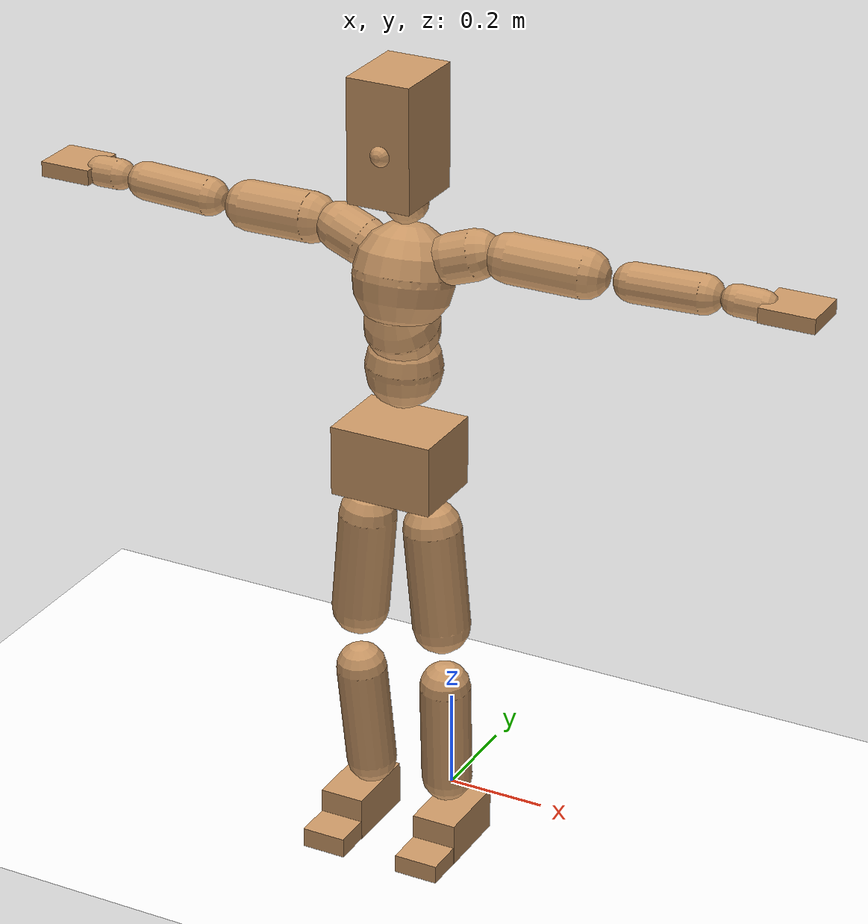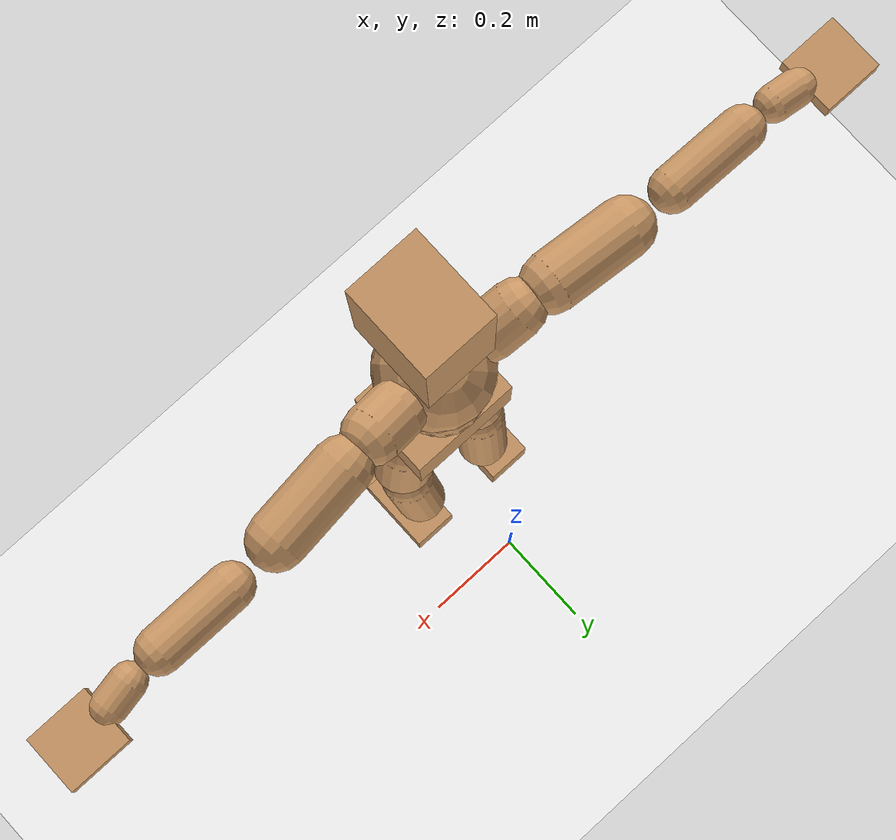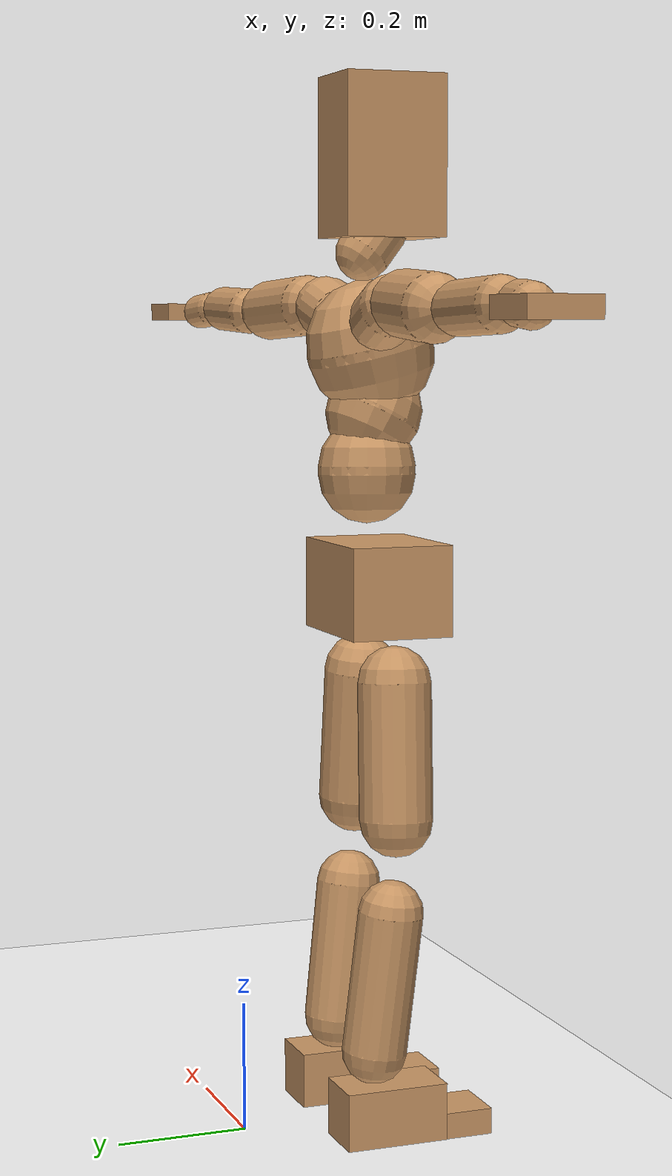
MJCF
<mujoco model="humanoid">
  <option integrator="implicitfast" />

  <visual>
    <global offwidth="1280" offheight="960" />
    <headlight active="1" ambient="0.34 0.34 0.34" diffuse="0.5 0.5 0.5" />
  </visual>

  <default>
    <joint damping="2" stiffness="2" armature="0.01" limited="true" solimplimit="0 .99 .01" />
    <geom condim="1" friction="0.7 0.005 0.0001" solimp=".99 .99 .003" solref="0.015 1" margin="0.001" rgba="0.8 0.6 .4 1" />
    <default class="smplcontact">
      <geom condim="3" friction="1. 0.005 0.0001" solref="0.015 1" solimp="0.98 0.98 0.001" priority="1" />
    </default>
    <default class="stiff_medium">
      <joint stiffness="10" />
    </default>
    <default class="stiff_medium_higher">
      <joint stiffness="50" />
    </default>
    <default class="stiff_high">
      <joint stiffness="100" />
    </default>
  </default>

  <asset>
    <texture type="skybox" builtin="gradient" rgb1="0.99 0.99 0.99" rgb2="0.608 0.828 0.892" width="100" />
    <texture builtin="flat" height="1278" mark="cross" markrgb="1 1 1" name="texgeom" random="0.01" rgb1="0.8 0.6 0.4" rgb2="0.8 0.6 0.4" type="cube" width="127" />
    <texture name="texplane" type="2d" builtin="checker" markrgb="1 1 1" rgb1="0.756 0.772 0.76" rgb2="0.6 0.6 0.6" width="100" height="100" />
    <material name="MatPlane" reflectance="0.5" texture="texplane" texrepeat="1 1" texuniform="true" />
    <material name="geom" texture="texgeom" texuniform="true" />
  </asset>

  <worldbody>
    <light name="tracking_light" pos="0 0 7" dir="0 0 -1" directional="true" cutoff="100" exponent="1" diffuse="1 1 1" specular="0.1 0.1 0.1" mode="trackcom" />
    <camera name="back" pos="0 3 2.4" xyaxes="-1 0 0 0 -1 2" mode="trackcom" />
    <camera name="side" pos="-3 0 2.4" xyaxes="0 -1 0 1 0 2" mode="trackcom" />
    <camera name="front_side" pos="-2.8 -2.8 0.8" xyaxes="0.5 -0.5 0 0.1 0.1 1" mode="trackcom" />
    <geom condim="3" name="floor" pos="0 0 0" rgba="1 1 1 1" size="100 100 .2" type="plane" material="MatPlane" />
    <body name="Pelvis" pos="-0.0018 -0.2233 0.84867" euler="90 0 0">
      <site name="Pelvis" size="0.01" />
      <freejoint name="Pelvis" />
      <geom type="box" pos="-0.0000 -0.0121 -0.0055" size="0.102891 0.0694925 0.0798875" quat="1.0000 0.0000 0.0000 0.0000" density="3165.830099" name="Pelvis" />
      <body name="L_Hip" pos="0.0628975 -0.082717 -0.006154">
        <joint name="L_Hip_x" type="hinge" pos="0 0 0" axis="1 0 0" stiffness="7.059019600000001" range="-160.0 22.92" class="stiff_medium" damping="10.088618991660221" armature="0.006408207052113538"/>
        <joint name="L_Hip_y" type="hinge" pos="0 0 0" axis="0 1 0" stiffness="7.063030000000001" range="-70.0 70.0" class="stiff_medium" damping="6.812341861400632" armature="0.006570551397430198"/>
        <joint name="L_Hip_z" type="hinge" pos="0 0 0" axis="0 0 1" stiffness="7.062227299999999" range="-28.65 90.0" class="stiff_medium" damping="6.727147226768412" armature="0.006407965630137385"/>
        <geom type="capsule" density="2040.816327" fromto="0.0062445 -0.067875 -0.0008145 0.024797 -0.271681 -0.003258" size="0.0568875" name="L_Hip" />
        <body name="L_Knee" pos="0.0310415 -0.339556 -0.0040725">
          <joint name="L_Knee_x" type="hinge" pos="0 0 0" axis="1 0 0" range="-5.16 171.89" damping="5.3987520774922855" armature="0.00643588650465933" stiffness="1.4152345199999998"/>
          <joint name="L_Knee_y" type="hinge" pos="0 0 0" axis="0 1 0" range="-4.58 6.88" damping="5.462562427142053" armature="0.006598734734073" stiffness="1.4131302"/>
          <joint name="L_Knee_z" type="hinge" pos="0 0 0" axis="0 0 1" range="-6.88 4.58" damping="5.400786754908547" armature="0.006434707722452646" stiffness="1.4165609199999998"/>
          <geom type="capsule" density="1234.567901" fromto="-0.0024435 -0.072038 -0.0078735 -0.0098645 -0.288152 -0.031675" size="0.0500425" name="L_Knee" />
          <body name="L_Ankle" pos="-0.012308 -0.36019 -0.0395485">
            <joint name="L_Ankle_x" type="hinge" pos="0 0 0" axis="1 0 0" range="-45.84 45.84" class="stiff_medium" damping="4.1195214950068735" armature="0.006581369938588682" stiffness="7.162666699999997"/>
            <joint name="L_Ankle_y" type="hinge" pos="0 0 0" axis="0 1 0" range="-74.48 22.92" class="stiff_medium" damping="2.060868718350738" armature="0.006588458314804352" stiffness="7.1626601"/>
            <joint name="L_Ankle_z" type="hinge" pos="0 0 0" axis="0 0 1" range="-4.58 4.58" class="stiff_medium" damping="4.136215798936453" armature="0.006634835312881372" stiffness="7.16265"/>
            <geom type="box" pos="0.0210865 -0.0216295 0.021901" size="0.0446775 0.04292 0.078625" quat="1.0000 0.0000 0.0000 0.0000" density="449.071558" name="L_Ankle" class="smplcontact" />
            <body name="L_Toe" pos="0.023892 -0.050499 0.107967">
              <joint name="L_Toe_x" type="hinge" pos="0 0 0" axis="1 0 0" range="-91.67 22.92" armature="0.006661741067505875" damping="1.3815313193289678" stiffness="1.43253"/>
              <joint name="L_Toe_y" type="hinge" pos="0 0 0" axis="0 1 0" range="-4.58 4.58" armature="0.006694275512852647" damping="1.3849007545977294" stiffness="1.43253"/>
              <joint name="L_Toe_z" type="hinge" pos="0 0 0" axis="0 0 1" range="-4.58 4.58" armature="0.006760058410183294" damping="1.3916886486811535" stiffness="1.43253"/>
              <geom type="box" pos="-0.002715 0.0049775 0.022444" size="0.044215 0.0185 0.04588" quat="1.0000 0.0000 0.0000 0.0000" density="423.206892" name="L_Toe" class="smplcontact" />
            </body>
          </body>
        </body>
      </body>
      <body name="R_Hip" pos="-0.0612685 -0.0819025 -0.0038915">
        <joint name="R_Hip_x" type="hinge" pos="0 0 0" axis="1 0 0" stiffness="7.059019600000001" range="-160.0 22.92" class="stiff_medium" damping="10.088618991660221" armature="0.006408207052113538"/>
        <joint name="R_Hip_y" type="hinge" pos="0 0 0" axis="0 1 0" stiffness="7.063030000000001" range="-70.0 70.0" class="stiff_medium" damping="6.812341861400632" armature="0.006570551397430198"/>
        <joint name="R_Hip_z" type="hinge" pos="0 0 0" axis="0 0 1" stiffness="7.062227299999999" range="-90.0 28.65" class="stiff_medium" damping="6.727147226768412" armature="0.006407965630137385"/>
        <geom type="capsule" density="2040.816327" fromto="-0.0069685 -0.0692325 -0.001629 -0.027693 -0.277021 -0.0064255" size="0.056055" name="R_Hip" />
        <body name="R_Knee" pos="-0.0346615 -0.346253 -0.0080545">
          <joint name="R_Knee_x" type="hinge" pos="0 0 0" axis="1 0 0" range="-5.16 171.89" damping="5.3987520774922855" armature="0.00643588650465933" stiffness="1.4152345199999998"/>
          <joint name="R_Knee_y" type="hinge" pos="0 0 0" axis="0 1 0" range="-6.88 4.58" damping="5.462562427142053" armature="0.006598734734073" stiffness="1.4131302"/>
          <joint name="R_Knee_z" type="hinge" pos="0 0 0" axis="0 0 1" range="-4.58 6.88" damping="5.400786754908547" armature="0.006434707722452646" stiffness="1.4165609199999998"/>
          <geom type="capsule" density="1234.567901" fromto="0.002896 -0.0721285 -0.0076925 0.011403 -0.288423 -0.030589" size="0.0500425" name="R_Knee" />
          <body name="R_Ankle" pos="0.014299 -0.360552 -0.0382815">
            <joint name="R_Ankle_x" type="hinge" pos="0 0 0" axis="1 0 0" range="-45.84 45.84" class="stiff_medium" damping="4.1195214950068735" armature="0.006581369938588682" stiffness="7.162666699999997"/>
            <joint name="R_Ankle_y" type="hinge" pos="0 0 0" axis="0 1 0" range="-22.92 74.48" class="stiff_medium" damping="2.060868718350738" armature="0.006588458314804352" stiffness="7.1626601"/>
            <joint name="R_Ankle_z" type="hinge" pos="0 0 0" axis="0 0 1" range="-4.58 4.58" class="stiff_medium" damping="4.136215798936453" armature="0.006634835312881372" stiffness="7.16265"/>
            <geom type="box" pos="-0.019186 -0.015747 0.023168" size="0.0446775 0.044215 0.0800125" quat="1.0000 0.0000 0.0000 0.0000" density="434.700981" name="R_Ankle" class="smplcontact" />
            <body name="R_Toe" pos="-0.022987 -0.0435305 0.111587">
              <joint name="R_Toe_x" type="hinge" pos="0 0 0" axis="1 0 0" range="-91.67 22.92" armature="0.006661741067505875" damping="1.3815313193289678" stiffness="1.43253"/>
              <joint name="R_Toe_y" type="hinge" pos="0 0 0" axis="0 1 0" range="-4.58 4.58" armature="0.006694275512852647" damping="1.3849007545977294" stiffness="1.43253"/>
              <joint name="R_Toe_z" type="hinge" pos="0 0 0" axis="0 0 1" range="-4.58 4.58" armature="0.006760058410183294" damping="1.3916886486811535" stiffness="1.43253"/>
              <geom type="box" pos="0.003801 0.0040725 0.0205435" size="0.0443075 0.01998 0.0456025" quat="1.0000 0.0000 0.0000 0.0000" density="407.384095" name="R_Toe" class="smplcontact" />
            </body>
          </body>
        </body>
      </body>
      <body name="Torso" pos="-0.00234375 0.102188 -0.0250313">
        <joint name="Torso_x" type="hinge" pos="0 0 0" axis="1 0 0" range="-25.78 57.3" class="stiff_medium" damping="12.8224026275221" armature="0.008499349819662676" stiffness="8.597468571428573"/>
        <joint name="Torso_y" type="hinge" pos="0 0 0" axis="0 1 0" range="-57.3 57.3" class="stiff_high" damping="15.294654309986344" armature="0.006651466447029044" stiffness="87.92288599999999"/>
        <joint name="Torso_z" type="hinge" pos="0 0 0" axis="0 0 1" range="-34.38 34.38" class="stiff_high" damping="16.48855203925081" armature="0.007862157342899157" stiffness="86.44966530612243"/>
        <geom type="capsule" density="2040.816327" fromto="0.00234375 0.057 0.00046875 0.0028125 0.0696563 0.0005625" size="0.0740162" name="Torso" />
        <body name="Spine" pos="0.00515625 0.12675 0.00103125">
          <joint name="Spine_x" type="hinge" pos="0 0 0" axis="1 0 0" stiffness="8.7609502" range="-25.78 57.3" class="stiff_medium" damping="13.303955779796373" armature="0.008978997602377135"/>
          <joint name="Spine_y" type="hinge" pos="0 0 0" axis="0 1 0" stiffness="8.867881020408163" range="-57.3 57.3" class="stiff_high" damping="6.138844436647147" armature="0.006640081726300023"/>
          <joint name="Spine_z" type="hinge" pos="0 0 0" axis="0 0 1" stiffness="17.7103704" range="-34.38 34.38" class="stiff_high" damping="9.899377872433693" armature="0.0076852086633651595"/>
          <geom type="capsule" density="2040.816327" fromto="0.00065625 0.0223125 0.0106875 0.00075 0.0272812 0.013125" size="0.0726688" name="Spine" />
          <body name="Chest" pos="0.00140625 0.0495938 0.0238125">
            <joint name="Chest_x" type="hinge" pos="0 0 0" axis="1 0 0" stiffness="9.015211458333333" range="-25.78 57.3" class="stiff_medium" damping="13.685797686421731" armature="0.009233828312382555"/>
            <joint name="Chest_y" type="hinge" pos="0 0 0" axis="0 1 0" stiffness="8.426705348837208" range="-57.3 57.3" class="stiff_high" damping="5.977805850699706" armature="0.006625914523638262"/>
            <joint name="Chest_z" type="hinge" pos="0 0 0" axis="0 0 1" stiffness="18.062326530612243" range="-34.38 34.38" class="stiff_high" damping="9.91897399751465" armature="0.00756532026577728"/>
            <geom type="capsule" density="2040.816327" fromto="-0.00084375 0.0639375 -0.0162188 -0.0009375 0.0780938 -0.019875" size="0.0964425" name="Chest" />
            <body name="Neck" pos="-0.002625 0.200531 -0.0402187">
              <joint name="Neck_x" type="hinge" pos="0 0 0" axis="1 0 0" range="-28.65 57.3" class="stiff_medium_higher" damping="11.29434558423241" armature="0.011509754415434496" stiffness="55.414841"/>
              <joint name="Neck_y" type="hinge" pos="0 0 0" axis="0 1 0" range="-40.11 40.11" class="stiff_medium_higher" damping="11.373375430351103" armature="0.011626001055209573" stiffness="55.631196"/>
              <joint name="Neck_z" type="hinge" pos="0 0 0" axis="0 0 1" range="-40.11 40.11" class="stiff_medium_higher" damping="11.35790228865833" armature="0.011517854896921673" stiffness="56.000855"/>
              <geom type="capsule" density="1000" fromto="0.0009375 0.0121875 0.00965625 0.00384375 0.04875 0.0385312" size="0.041965" name="Neck" />
              <body name="Head" pos="0.005265 0.0658125 0.0519412">
                <joint name="Head_x" type="hinge" pos="0 0 0" axis="1 0 0" range="-28.65 57.3" class="stiff_medium_higher" damping="2.300966144733134" armature="0.01170575005838689" stiffness="56.536799999999985"/>
                <joint name="Head_y" type="hinge" pos="0 0 0" axis="0 1 0" range="-40.11 40.11" class="stiff_medium_higher" damping="2.3291885719491776" armature="0.011994664103067936" stiffness="56.536799999999985"/>
                <joint name="Head_z" type="hinge" pos="0 0 0" axis="0 0 1" range="-40.11 40.11" class="stiff_medium_higher" damping="2.299559769050301" armature="0.01169144506638746" stiffness="56.536799999999985"/>
                <geom type="box" pos="-0.0042525 0.088695 -0.011745" size="0.0628725 0.119728 0.07885" quat="1.0000 0.0000 0.0000 0.0000" density="1018.069894" name="Head" />
                <geom type="capsule" name="nose" size="0.02075 0.010375" pos="0 0.070875 0.050625" quat="1 0 0 0" mass="0" contype="0" conaffinity="0" />
              </body>
            </body>
            <body name="L_Thorax" pos="0.071905 0.111051 -0.0311162">
              <joint name="L_Thorax_x" type="hinge" pos="0 0 0" axis="1 0 0" range="-10.89 4.58" class="stiff_medium_higher" damping="13.769847477566334" armature="0.006618225187493814" stiffness="35.81184799999999"/>
              <joint name="L_Thorax_y" type="hinge" pos="0 0 0" axis="0 1 0" range="-28.65 17.19" class="stiff_medium_higher" damping="13.6877498124035" armature="0.006541700555492172" stiffness="35.8000365"/>
              <joint name="L_Thorax_z" type="hinge" pos="0 0 0" axis="0 0 1" range="-31.51 40.11" class="stiff_medium_higher" damping="13.687718883072783" armature="0.006541631431418489" stiffness="35.800253"/>
              <geom type="capsule" density="1000" fromto="0.0166075 0.00556625 -0.0016425 0.06643 0.022265 -0.00647875" size="0.0481925" name="L_Thorax" />
              <body name="L_Shoulder" pos="0.0830375 0.0278312 -0.00812125">
                <joint name="L_Shoulder_x" type="hinge" pos="0 0 0" axis="1 0 0" range="-97.4 97.4" class="stiff_medium" damping="4.140680812119779" armature="0.0066483149147575984" stiffness="7.1635686"/>
                <joint name="L_Shoulder_y" type="hinge" pos="0 0 0" axis="0 1 0" range="-108.86 80.21" class="stiff_medium" damping="4.107508281024237" armature="0.006544449514986255" stiffness="7.1611252999999975"/>
                <joint name="L_Shoulder_z" type="hinge" pos="0 0 0" axis="0 0 1" range="-97.4 85.94" class="stiff_medium" damping="4.107459292799619" armature="0.006544360215204572" stiffness="7.161052200000001"/>
                <geom type="capsule" density="1000" fromto="0.0473587 -0.0023725 -0.00501875 0.189526 -0.0093075 -0.020075" size="0.0478225" name="L_Shoulder" />
                <body name="L_Elbow" pos="0.236885 -0.01168 -0.0250937">
                  <joint name="L_Elbow_x" type="hinge" pos="0 0 0" axis="1 0 0" range="-17.19 4.58" damping="3.464830801098833" armature="0.006696224458829419" stiffness="1.43424732"/>
                  <joint name="L_Elbow_y" type="hinge" pos="0 0 0" axis="0 1 0" range="-180.0 17.19" damping="3.428838548680461" armature="0.006557845144161292" stiffness="1.4342435400000002"/>
                  <joint name="L_Elbow_z" type="hinge" pos="0 0 0" axis="0 0 1" range="-100.84 4.58" damping="3.428779699452795" armature="0.006557376627383684" stiffness="1.43429678"/>
                  <geom type="capsule" density="1000" fromto="0.0454425 0.0016425 -0.0001825 0.181952 0.00657 -0.00082125" size="0.0374625" name="L_Elbow" />
                  <body name="L_Wrist" pos="0.227395 0.0082125 -0.001095">
                    <joint name="L_Wrist_x" type="hinge" pos="0 0 0" axis="1 0 0" range="-180.0 22.92" armature="0.0067099423718388305" damping="1.390550624904164" stiffness="1.4408700799999998"/>
                    <joint name="L_Wrist_y" type="hinge" pos="0 0 0" axis="0 1 0" range="-17.19 17.19" armature="0.006603119559365008" damping="1.3791928461445049" stiffness="1.44035928"/>
                    <joint name="L_Wrist_z" type="hinge" pos="0 0 0" axis="0 0 1" range="-22.92 22.92" armature="0.006597168478041005" damping="1.3786499724731671" stiffness="1.44052388"/>
                    <geom type="capsule" density="1000" fromto="0.01533 -0.00146 -0.0027375 0.06132 -0.00593125 -0.01095" size="0.029415" name="L_Wrist" class="smplcontact" />
                    <body name="L_Hand" pos="0.07665 -0.0074825 -0.0135962">
                      <joint name="L_Hand_x" type="hinge" pos="0 0 0" axis="1 0 0" range="-17.19 17.19" armature="0.006763951043966375" damping="1.3978454525277368" stiffness="1.4444012800000001"/>
                      <joint name="L_Hand_y" type="hinge" pos="0 0 0" axis="0 1 0" range="-51.57 51.57" armature="0.0066760883728632274" damping="1.3887367921575964" stiffness="1.4444010999999999"/>
                      <joint name="L_Hand_z" type="hinge" pos="0 0 0" axis="0 0 1" range="-91.67 91.67" armature="0.006652667441531812" damping="1.386298633427588" stiffness="1.4444009999999998"/>
                      <geom type="box" pos="0.0449862 0.0009125 -0.0052925" size="0.0541125 0.014615 0.049765" quat="1.0000 0.0000 0.0000 0.0000" density="400.552564" name="L_Hand" class="smplcontact" />
                    </body>
                  </body>
                </body>
              </body>
            </body>
            <body name="R_Thorax" pos="-0.0746425 0.108405 -0.0352225">
              <joint name="R_Thorax_x" type="hinge" pos="0 0 0" axis="1 0 0" range="-10.89 4.58" class="stiff_medium_higher" damping="13.769847477566334" armature="0.006618225187493814" stiffness="35.81184799999999"/>
              <joint name="R_Thorax_y" type="hinge" pos="0 0 0" axis="0 1 0" range="-17.19 28.65" class="stiff_medium_higher" damping="13.6877498124035" armature="0.006541700555492172" stiffness="35.8000365"/>
              <joint name="R_Thorax_z" type="hinge" pos="0 0 0" axis="0 0 1" range="-40.11 31.51" class="stiff_medium_higher" damping="13.687718883072783" armature="0.006541631431418489" stiffness="35.800253"/>
              <geom type="capsule" density="1000" fromto="-0.01752 0.00593125 -0.0016425 -0.07008 0.023725 -0.00666125" size="0.0472675" name="R_Thorax" />
              <body name="R_Shoulder" pos="-0.0876 0.0297475 -0.00830375">
                <joint name="R_Shoulder_x" type="hinge" pos="0 0 0" axis="1 0 0" range="-97.4 97.4" class="stiff_medium" damping="4.140680812119779" armature="0.0066483149147575984" stiffness="7.1635686"/>
                <joint name="R_Shoulder_y" type="hinge" pos="0 0 0" axis="0 1 0" range="-80.21 108.86" class="stiff_medium" damping="4.107508281024237" armature="0.006544449514986255" stiffness="7.1611252999999975"/>
                <joint name="R_Shoulder_z" type="hinge" pos="0 0 0" axis="0 0 1" range="-85.94 97.4" class="stiff_medium" damping="4.107459292799619" armature="0.006544360215204572" stiffness="7.161052200000001"/>
                <geom type="capsule" density="1000" fromto="-0.0462637 -0.00246375 -0.00392375 -0.185237 -0.00976375 -0.0156037" size="0.0491175" name="R_Shoulder" />
                <body name="R_Elbow" pos="-0.231501 -0.0121362 -0.0195275">
                  <joint name="R_Elbow_x" type="hinge" pos="0 0 0" axis="1 0 0" range="-17.19 4.58" damping="3.464830801098833" armature="0.006696224458829419" stiffness="1.43424732"/>
                  <joint name="R_Elbow_y" type="hinge" pos="0 0 0" axis="0 1 0" range="-17.19 180.0" damping="3.428838548680461" armature="0.006557845144161292" stiffness="1.4342435400000002"/>
                  <joint name="R_Elbow_z" type="hinge" pos="0 0 0" axis="0 0 1" range="-4.58 100.84" damping="3.428779699452795" armature="0.006557376627383684" stiffness="1.43429678"/>
                  <geom type="capsule" density="1000" fromto="-0.0466287 0.00146 -0.00100375 -0.186332 0.0056575 -0.004015" size="0.03774" name="R_Elbow" />
                  <body name="R_Wrist" pos="-0.232961 0.0071175 -0.00511">
                    <joint name="R_Wrist_x" type="hinge" pos="0 0 0" axis="1 0 0" range="-180.0 22.92" armature="0.0067099423718388305" damping="1.390550624904164" stiffness="1.4408700799999998"/>
                    <joint name="R_Wrist_y" type="hinge" pos="0 0 0" axis="0 1 0" range="-17.19 17.19" armature="0.006603119559365008" damping="1.3791928461445049" stiffness="1.44035928"/>
                    <joint name="R_Wrist_z" type="hinge" pos="0 0 0" axis="0 0 1" range="-22.92 22.92" armature="0.006597168478041005" damping="1.3786499724731671" stiffness="1.44052388"/>
                    <geom type="capsule" density="1000" fromto="-0.0154212 -0.001095 -0.00191625 -0.0617762 -0.00447125 -0.00757375" size="0.030155" name="R_Wrist" class="smplcontact" />
                    <body name="R_Hand" pos="-0.0771975 -0.00556625 -0.00939875">
                      <joint name="R_Hand_x" type="hinge" pos="0 0 0" axis="1 0 0" range="-17.19 17.19" armature="0.006763951043966375" damping="1.3978454525277368" stiffness="1.4444012800000001"/>
                      <joint name="R_Hand_y" type="hinge" pos="0 0 0" axis="0 1 0" range="-51.57 51.57" armature="0.0066760883728632274" damping="1.3887367921575964" stiffness="1.4444010999999999"/>
                      <joint name="R_Hand_z" type="hinge" pos="0 0 0" axis="0 0 1" range="-91.67 91.67" armature="0.006652667441531812" damping="1.386298633427588" stiffness="1.4444009999999998"/>
                      <geom type="box" pos="-0.0421575 -0.00082125 -0.00720875" size="0.0526325 0.01517 0.050505" quat="1.0000 0.0000 0.0000 0.0000" density="403.679611" name="R_Hand" class="smplcontact" />
                    </body>
                  </body>
                </body>
              </body>
            </body>
          </body>
        </body>
      </body>
    </body>
  </worldbody>
  <actuator>
    <general name="L_Hip_x" joint="L_Hip_x" biastype="affine" gainprm="202.82685541322556" biasprm="-151.9981704572762 -127.06235280000001 -1.3451491988880295" ctrllimited="true" ctrlrange="-1 1" forcerange="-254.12470560000003 254.12470560000003" />
    <general name="L_Hip_y" joint="L_Hip_y" biastype="affine" gainprm="155.32414212059024" biasprm="0.0 -127.13454000000002 -1.3624683722801263" ctrllimited="true" ctrlrange="-1 1" forcerange="-254.26908000000003 254.26908000000003" />
    <general name="L_Hip_z" joint="L_Hip_z" biastype="affine" gainprm="131.62225012722052" biasprm="68.05752250573096 -127.12009139999998 -1.3454294453536824" ctrllimited="true" ctrlrange="-1 1" forcerange="-254.24018279999996 254.24018279999996" />
    <general name="L_Knee_x" joint="L_Knee_x" biastype="affine" gainprm="196.79507505252568" biasprm="185.32416189498787 -127.37110679999998 -1.3496880193730714" ctrllimited="true" ctrlrange="-1 1" forcerange="-254.74221359999996 254.74221359999996" />
    <general name="L_Knee_y" joint="L_Knee_y" biastype="affine" gainprm="12.71910863824803" biasprm="2.552700686559378 -127.18171799999999 -1.3656406067855134" ctrllimited="true" ctrlrange="-1 1" forcerange="-254.36343599999998 254.36343599999998" />
    <general name="L_Knee_z" joint="L_Knee_z" biastype="affine" gainprm="12.74998739265255" biasprm="-2.558897993289779 -127.49048279999998 -1.3501966887271368" ctrllimited="true" ctrlrange="-1 1" forcerange="-254.98096559999996 254.98096559999996" />
    <general name="L_Ankle_x" joint="L_Ankle_x" biastype="affine" gainprm="51.5749990464355" biasprm="0.0 -64.46400029999998 -1.373173831668958" ctrllimited="true" ctrlrange="-1 1" forcerange="-128.92800059999996 128.92800059999996" />
    <general name="L_Ankle_y" joint="L_Ankle_y" biastype="affine" gainprm="54.79276045303099" biasprm="-29.005284691563432 -64.4639409 -1.373912478900492" ctrllimited="true" ctrlrange="-1 1" forcerange="-128.9278818 128.9278818" />
    <general name="L_Ankle_z" joint="L_Ankle_z" biastype="affine" gainprm="5.152987454033799" biasprm="0.0 -64.46385000000001 -1.3787385996454842" ctrllimited="true" ctrlrange="-1 1" forcerange="-128.92770000000002 128.92770000000002" />
    <general name="L_Toe_x" joint="L_Toe_x" biastype="affine" gainprm="51.57037837185442" biasprm="-30.94042685282303 -51.57108 -0.5526125277315871" ctrllimited="true" ctrlrange="-1 1" forcerange="-103.14216 103.14216" />
    <general name="L_Toe_y" joint="L_Toe_y" biastype="affine" gainprm="4.1223899632270395" biasprm="0.0 -51.57108 -0.5539603018390918" ctrllimited="true" ctrlrange="-1 1" forcerange="-103.14216 103.14216" />
    <general name="L_Toe_z" joint="L_Toe_z" biastype="affine" gainprm="4.1223899632270395" biasprm="0.0 -51.57108 -0.5566754594724614" ctrllimited="true" ctrlrange="-1 1" forcerange="-103.14216 103.14216" />
    <general name="R_Hip_x" joint="R_Hip_x" biastype="affine" gainprm="202.82685541322556" biasprm="-151.9981704572762 -127.06235280000001 -1.3451491988880295" ctrllimited="true" ctrlrange="-1 1" forcerange="-254.12470560000003 254.12470560000003" />
    <general name="R_Hip_y" joint="R_Hip_y" biastype="affine" gainprm="155.32414212059024" biasprm="0.0 -127.13454000000002 -1.3624683722801263" ctrllimited="true" ctrlrange="-1 1" forcerange="-254.26908000000003 254.26908000000003" />
    <general name="R_Hip_z" joint="R_Hip_z" biastype="affine" gainprm="131.62225012722052" biasprm="-68.05752250573096 -127.12009139999998 -1.3454294453536824" ctrllimited="true" ctrlrange="-1 1" forcerange="-254.24018279999996 254.24018279999996" />
    <general name="R_Knee_x" joint="R_Knee_x" biastype="affine" gainprm="196.79507505252568" biasprm="185.32416189498787 -127.37110679999998 -1.3496880193730714" ctrllimited="true" ctrlrange="-1 1" forcerange="-254.74221359999996 254.74221359999996" />
    <general name="R_Knee_y" joint="R_Knee_y" biastype="affine" gainprm="12.71910863824803" biasprm="-2.552700686559378 -127.18171799999999 -1.3656406067855134" ctrllimited="true" ctrlrange="-1 1" forcerange="-254.36343599999998 254.36343599999998" />
    <general name="R_Knee_z" joint="R_Knee_z" biastype="affine" gainprm="12.74998739265255" biasprm="2.558897993289779 -127.49048279999998 -1.3501966887271368" ctrllimited="true" ctrlrange="-1 1" forcerange="-254.98096559999996 254.98096559999996" />
    <general name="R_Ankle_x" joint="R_Ankle_x" biastype="affine" gainprm="51.5749990464355" biasprm="0.0 -64.46400029999998 -1.373173831668958" ctrllimited="true" ctrlrange="-1 1" forcerange="-128.92800059999996 128.92800059999996" />
    <general name="R_Ankle_y" joint="R_Ankle_y" biastype="affine" gainprm="54.79276045303099" biasprm="29.005284691563432 -64.4639409 -1.373912478900492" ctrllimited="true" ctrlrange="-1 1" forcerange="-128.9278818 128.9278818" />
    <general name="R_Ankle_z" joint="R_Ankle_z" biastype="affine" gainprm="5.152987454033799" biasprm="0.0 -64.46385000000001 -1.3787385996454842" ctrllimited="true" ctrlrange="-1 1" forcerange="-128.92770000000002 128.92770000000002" />
    <general name="R_Toe_x" joint="R_Toe_x" biastype="affine" gainprm="51.57037837185442" biasprm="-30.94042685282303 -51.57108 -0.5526125277315871" ctrllimited="true" ctrlrange="-1 1" forcerange="-103.14216 103.14216" />
    <general name="R_Toe_y" joint="R_Toe_y" biastype="affine" gainprm="4.1223899632270395" biasprm="0.0 -51.57108 -0.5539603018390918" ctrllimited="true" ctrlrange="-1 1" forcerange="-103.14216 103.14216" />
    <general name="R_Toe_z" joint="R_Toe_z" biastype="affine" gainprm="4.1223899632270395" biasprm="0.0 -51.57108 -0.5566754594724614" ctrllimited="true" ctrlrange="-1 1" forcerange="-103.14216 103.14216" />
    <general name="Torso_x" joint="Torso_x" biastype="affine" gainprm="149.59796934108107" biasprm="56.756475609423134 -206.33924571428574 -3.419307367339227" ctrllimited="true" ctrlrange="-1 1" forcerange="-309.5088685714286 309.5088685714286" />
    <general name="Torso_y" joint="Torso_y" biastype="affine" gainprm="211.0304700533698" biasprm="0.0 -211.01492639999998 -3.058930861997269" ctrllimited="true" ctrlrange="-1 1" forcerange="-316.52238959999994 316.52238959999994" />
    <general name="Torso_z" joint="Torso_z" biastype="affine" gainprm="124.49668796477529" biasprm="0.0 -207.47919673469383 -3.2977104078501616" ctrllimited="true" ctrlrange="-1 1" forcerange="-311.21879510204076 311.21879510204076" />
    <general name="Spine_x" joint="Spine_x" biastype="affine" gainprm="152.4425880164122" biasprm="57.83570503463303 -210.2628048 -3.547721541279033" ctrllimited="true" ctrlrange="-1 1" forcerange="-315.3942072 315.3942072" />
    <general name="Spine_y" joint="Spine_y" biastype="affine" gainprm="212.84482178099697" biasprm="0.0 -212.8291444897959 -3.0694222183235733" ctrllimited="true" ctrlrange="-1 1" forcerange="-319.24371673469386 319.24371673469386" />
    <general name="Spine_z" joint="Spine_z" biastype="affine" gainprm="127.52405978795855" biasprm="0.0 -212.5244448 -3.2997926241445645" ctrllimited="true" ctrlrange="-1 1" forcerange="-318.7866672 318.7866672" />
    <general name="Chest_x" joint="Chest_x" biastype="affine" gainprm="156.8667935383935" biasprm="59.51421921437363 -216.365075 -3.6495460497124617" ctrllimited="true" ctrlrange="-1 1" forcerange="-324.5476125 324.5476125" />
    <general name="Chest_y" joint="Chest_y" biastype="affine" gainprm="202.25582572054807" biasprm="0.0 -202.24092837209298 -2.988902925349853" ctrllimited="true" ctrlrange="-1 1" forcerange="-303.36139255813947 303.36139255813947" />
    <general name="Chest_z" joint="Chest_z" biastype="affine" gainprm="130.05833059253385" biasprm="0.0 -216.74791836734693 -3.3063246658382166" ctrllimited="true" ctrlrange="-1 1" forcerange="-325.12187755102036 325.12187755102036" />
    <general name="Neck_x" joint="Neck_x" biastype="affine" gainprm="29.926218384558247" biasprm="9.975406128186084 -39.89868552 -0.9035476467385929" ctrllimited="true" ctrlrange="-1 1" forcerange="-79.79737104 79.79737104" />
    <general name="Neck_y" joint="Neck_y" biastype="affine" gainprm="28.040188111174388" biasprm="0.0 -40.054461120000006 -0.9098700344280882" ctrllimited="true" ctrlrange="-1 1" forcerange="-80.10892224000001 80.10892224000001" />
    <general name="Neck_z" joint="Neck_z" biastype="affine" gainprm="28.22650997089117" biasprm="0.0 -40.320615600000004 -0.9086321830926665" ctrllimited="true" ctrlrange="-1 1" forcerange="-80.64123120000001 80.64123120000001" />
    <general name="Head_x" joint="Head_x" biastype="affine" gainprm="20.354747248594677" biasprm="6.784915749531559 -27.137663999999994 -0.9203864578932537" ctrllimited="true" ctrlrange="-1 1" forcerange="-54.27532799999999 54.27532799999999" />
    <general name="Head_y" joint="Head_y" biastype="affine" gainprm="18.997764098688364" biasprm="0.0 -27.137663999999994 -0.9316754287796711" ctrllimited="true" ctrlrange="-1 1" forcerange="-54.27532799999999 54.27532799999999" />
    <general name="Head_z" joint="Head_z" biastype="affine" gainprm="18.997764098688364" biasprm="0.0 -27.137663999999994 -0.9198239076201205" ctrllimited="true" ctrlrange="-1 1" forcerange="-54.27532799999999 54.27532799999999" />
    <general name="L_Thorax_x" joint="L_Thorax_x" biastype="affine" gainprm="11.60314340640402" biasprm="-4.732762436613407 -85.94843519999998 -1.1015877982053066" ctrllimited="true" ctrlrange="-1 1" forcerange="-171.89687039999995 171.89687039999995" />
    <general name="L_Thorax_y" joint="L_Thorax_y" biastype="affine" gainprm="34.37056663732715" biasprm="-8.592641659331788 -85.9200876 -1.0950199849922801" ctrllimited="true" ctrlrange="-1 1" forcerange="-171.8401752 171.8401752" />
    <general name="L_Thorax_z" joint="L_Thorax_z" biastype="affine" gainprm="53.70058615101784" biasprm="6.448269211096807 -85.92060719999999 -1.0950175106458226" ctrllimited="true" ctrlrange="-1 1" forcerange="-171.84121439999998 171.84121439999998" />
    <general name="L_Shoulder_x" joint="L_Shoulder_x" biastype="affine" gainprm="58.453024294874965" biasprm="0.0 -34.38512928 -1.1041815498986078" ctrllimited="true" ctrlrange="-1 1" forcerange="-68.77025856 68.77025856" />
    <general name="L_Shoulder_y" joint="L_Shoulder_y" biastype="affine" gainprm="56.71429087352663" biasprm="-8.59398335815591 -34.37340143999999 -1.0953355416064632" ctrllimited="true" ctrlrange="-1 1" forcerange="-68.74680287999998 68.74680287999998" />
    <general name="L_Shoulder_z" joint="L_Shoulder_z" biastype="affine" gainprm="54.99493281378149" biasprm="-3.4375582526777424 -34.37305056 -1.0953224780798985" ctrllimited="true" ctrlrange="-1 1" forcerange="-68.74610112 68.74610112" />
    <general name="L_Elbow_x" joint="L_Elbow_x" biastype="affine" gainprm="9.809171977263583" biasprm="-5.681840084211935 -51.632903520000006 -0.5543729281758133" ctrllimited="true" ctrlrange="-1 1" forcerange="-103.26580704000001 103.26580704000001" />
    <general name="L_Elbow_y" joint="L_Elbow_y" biastype="affine" gainprm="88.85004705424133" biasprm="-73.35907581977297 -51.63276744000001 -0.5486141677888737" ctrllimited="true" ctrlrange="-1 1" forcerange="-103.26553488000002 103.26553488000002" />
    <general name="L_Elbow_z" joint="L_Elbow_z" biastype="affine" gainprm="47.50200138625155" biasprm="-43.37452716221376 -51.63468408 -0.5486047519124472" ctrllimited="true" ctrlrange="-1 1" forcerange="-103.26936816 103.26936816" />
    <general name="L_Wrist_x" joint="L_Wrist_x" biastype="affine" gainprm="15.30905203411225" biasprm="-11.850709114519772 -8.645220479999999 -0.5562202499616656" ctrllimited="true" ctrlrange="-1 1" forcerange="-17.290440959999998 17.290440959999998" />
    <general name="L_Wrist_y" joint="L_Wrist_y" biastype="affine" gainprm="2.592837681967128" biasprm="0.0 -8.64215568 -0.551677138457802" ctrllimited="true" ctrlrange="-1 1" forcerange="-17.28431136 17.28431136" />
    <general name="L_Wrist_z" joint="L_Wrist_z" biastype="affine" gainprm="3.4575119783887005" biasprm="0.0 -8.64314328 -0.5514599889892668" ctrllimited="true" ctrlrange="-1 1" forcerange="-17.28628656 17.28628656" />
    <general name="L_Hand_x" joint="L_Hand_x" biastype="affine" gainprm="2.6001138178979573" biasprm="0.0 -8.66640768 -0.5591381810110948" ctrllimited="true" ctrlrange="-1 1" forcerange="-17.33281536 17.33281536" />
    <general name="L_Hand_y" joint="L_Hand_y" biastype="affine" gainprm="7.8003404816222695" biasprm="0.0 -8.666406599999998 -0.5554947168630385" ctrllimited="true" ctrlrange="-1 1" forcerange="-17.332813199999997 17.332813199999997" />
    <general name="L_Hand_z" joint="L_Hand_z" biastype="affine" gainprm="13.865758434067619" biasprm="0.0 -8.666405999999998 -0.5545194533710353" ctrllimited="true" ctrlrange="-1 1" forcerange="-17.332811999999997 17.332811999999997" />
    <general name="R_Thorax_x" joint="R_Thorax_x" biastype="affine" gainprm="11.60314340640402" biasprm="-4.732762436613407 -85.94843519999998 -1.1015877982053066" ctrllimited="true" ctrlrange="-1 1" forcerange="-171.89687039999995 171.89687039999995" />
    <general name="R_Thorax_y" joint="R_Thorax_y" biastype="affine" gainprm="34.37056663732715" biasprm="8.592641659331782 -85.9200876 -1.0950199849922801" ctrllimited="true" ctrlrange="-1 1" forcerange="-171.8401752 171.8401752" />
    <general name="R_Thorax_z" joint="R_Thorax_z" biastype="affine" gainprm="53.70058615101784" biasprm="-6.448269211096807 -85.92060719999999 -1.0950175106458226" ctrllimited="true" ctrlrange="-1 1" forcerange="-171.84121439999998 171.84121439999998" />
    <general name="R_Shoulder_x" joint="R_Shoulder_x" biastype="affine" gainprm="58.453024294874965" biasprm="0.0 -34.38512928 -1.1041815498986078" ctrllimited="true" ctrlrange="-1 1" forcerange="-68.77025856 68.77025856" />
    <general name="R_Shoulder_y" joint="R_Shoulder_y" biastype="affine" gainprm="56.71429087352663" biasprm="8.59398335815591 -34.37340143999999 -1.0953355416064632" ctrllimited="true" ctrlrange="-1 1" forcerange="-68.74680287999998 68.74680287999998" />
    <general name="R_Shoulder_z" joint="R_Shoulder_z" biastype="affine" gainprm="54.99493281378149" biasprm="3.437558252677735 -34.37305056 -1.0953224780798985" ctrllimited="true" ctrlrange="-1 1" forcerange="-68.74610112 68.74610112" />
    <general name="R_Elbow_x" joint="R_Elbow_x" biastype="affine" gainprm="9.809171977263583" biasprm="-5.681840084211935 -51.632903520000006 -0.5543729281758133" ctrllimited="true" ctrlrange="-1 1" forcerange="-103.26580704000001 103.26580704000001" />
    <general name="R_Elbow_y" joint="R_Elbow_y" biastype="affine" gainprm="88.85004705424133" biasprm="73.35907581977297 -51.63276744000001 -0.5486141677888737" ctrllimited="true" ctrlrange="-1 1" forcerange="-103.26553488000002 103.26553488000002" />
    <general name="R_Elbow_z" joint="R_Elbow_z" biastype="affine" gainprm="47.50200138625155" biasprm="43.37452716221376 -51.63468408 -0.5486047519124472" ctrllimited="true" ctrlrange="-1 1" forcerange="-103.26936816 103.26936816" />
    <general name="R_Wrist_x" joint="R_Wrist_x" biastype="affine" gainprm="15.30905203411225" biasprm="-11.850709114519772 -8.645220479999999 -0.5562202499616656" ctrllimited="true" ctrlrange="-1 1" forcerange="-17.290440959999998 17.290440959999998" />
    <general name="R_Wrist_y" joint="R_Wrist_y" biastype="affine" gainprm="2.592837681967128" biasprm="0.0 -8.64215568 -0.551677138457802" ctrllimited="true" ctrlrange="-1 1" forcerange="-17.28431136 17.28431136" />
    <general name="R_Wrist_z" joint="R_Wrist_z" biastype="affine" gainprm="3.4575119783887005" biasprm="0.0 -8.64314328 -0.5514599889892668" ctrllimited="true" ctrlrange="-1 1" forcerange="-17.28628656 17.28628656" />
    <general name="R_Hand_x" joint="R_Hand_x" biastype="affine" gainprm="2.6001138178979573" biasprm="0.0 -8.66640768 -0.5591381810110948" ctrllimited="true" ctrlrange="-1 1" forcerange="-17.33281536 17.33281536" />
    <general name="R_Hand_y" joint="R_Hand_y" biastype="affine" gainprm="7.8003404816222695" biasprm="0.0 -8.666406599999998 -0.5554947168630385" ctrllimited="true" ctrlrange="-1 1" forcerange="-17.332813199999997 17.332813199999997" />
    <general name="R_Hand_z" joint="R_Hand_z" biastype="affine" gainprm="13.865758434067619" biasprm="0.0 -8.666405999999998 -0.5545194533710353" ctrllimited="true" ctrlrange="-1 1" forcerange="-17.332811999999997 17.332811999999997" />
  </actuator>
  <contact>
    <exclude body1="Torso" body2="Chest" />
    <exclude body1="Head" body2="Chest" />
    <exclude body1="R_Knee" body2="R_Toe" />
    <exclude body1="R_Knee" body2="L_Ankle" />
    <exclude body1="R_Knee" body2="L_Toe" />
    <exclude body1="L_Knee" body2="L_Toe" />
    <exclude body1="L_Knee" body2="R_Ankle" />
    <exclude body1="L_Knee" body2="R_Toe" />
    <exclude body1="L_Shoulder" body2="Chest" />
    <exclude body1="R_Shoulder" body2="Chest" />
  </contact>
  <sensor>
    <framelinvel name="sensor_Pelvis_framelinvel" objtype="xbody" objname="Pelvis" />
    <framelinvel name="sensor_L_Hip_framelinvel" objtype="xbody" objname="L_Hip" />
    <framelinvel name="sensor_L_Knee_framelinvel" objtype="xbody" objname="L_Knee" />
    <framelinvel name="sensor_L_Ankle_framelinvel" objtype="xbody" objname="L_Ankle" />
    <framelinvel name="sensor_L_Toe_framelinvel" objtype="xbody" objname="L_Toe" />
    <framelinvel name="sensor_R_Hip_framelinvel" objtype="xbody" objname="R_Hip" />
    <framelinvel name="sensor_R_Knee_framelinvel" objtype="xbody" objname="R_Knee" />
    <framelinvel name="sensor_R_Ankle_framelinvel" objtype="xbody" objname="R_Ankle" />
    <framelinvel name="sensor_R_Toe_framelinvel" objtype="xbody" objname="R_Toe" />
    <framelinvel name="sensor_Torso_framelinvel" objtype="xbody" objname="Torso" />
    <framelinvel name="sensor_Spine_framelinvel" objtype="xbody" objname="Spine" />
    <framelinvel name="sensor_Chest_framelinvel" objtype="xbody" objname="Chest" />
    <framelinvel name="sensor_Neck_framelinvel" objtype="xbody" objname="Neck" />
    <framelinvel name="sensor_Head_framelinvel" objtype="xbody" objname="Head" />
    <framelinvel name="sensor_L_Thorax_framelinvel" objtype="xbody" objname="L_Thorax" />
    <framelinvel name="sensor_L_Shoulder_framelinvel" objtype="xbody" objname="L_Shoulder" />
    <framelinvel name="sensor_L_Elbow_framelinvel" objtype="xbody" objname="L_Elbow" />
    <framelinvel name="sensor_L_Wrist_framelinvel" objtype="xbody" objname="L_Wrist" />
    <framelinvel name="sensor_L_Hand_framelinvel" objtype="xbody" objname="L_Hand" />
    <framelinvel name="sensor_R_Thorax_framelinvel" objtype="xbody" objname="R_Thorax" />
    <framelinvel name="sensor_R_Shoulder_framelinvel" objtype="xbody" objname="R_Shoulder" />
    <framelinvel name="sensor_R_Elbow_framelinvel" objtype="xbody" objname="R_Elbow" />
    <framelinvel name="sensor_R_Wrist_framelinvel" objtype="xbody" objname="R_Wrist" />
    <framelinvel name="sensor_R_Hand_framelinvel" objtype="xbody" objname="R_Hand" />
    <frameangvel name="sensor_Pelvis_frameangvel" objtype="xbody" objname="Pelvis" />
    <frameangvel name="sensor_L_Hip_frameangvel" objtype="xbody" objname="L_Hip" />
    <frameangvel name="sensor_L_Knee_frameangvel" objtype="xbody" objname="L_Knee" />
    <frameangvel name="sensor_L_Ankle_frameangvel" objtype="xbody" objname="L_Ankle" />
    <frameangvel name="sensor_L_Toe_frameangvel" objtype="xbody" objname="L_Toe" />
    <frameangvel name="sensor_R_Hip_frameangvel" objtype="xbody" objname="R_Hip" />
    <frameangvel name="sensor_R_Knee_frameangvel" objtype="xbody" objname="R_Knee" />
    <frameangvel name="sensor_R_Ankle_frameangvel" objtype="xbody" objname="R_Ankle" />
    <frameangvel name="sensor_R_Toe_frameangvel" objtype="xbody" objname="R_Toe" />
    <frameangvel name="sensor_Torso_frameangvel" objtype="xbody" objname="Torso" />
    <frameangvel name="sensor_Spine_frameangvel" objtype="xbody" objname="Spine" />
    <frameangvel name="sensor_Chest_frameangvel" objtype="xbody" objname="Chest" />
    <frameangvel name="sensor_Neck_frameangvel" objtype="xbody" objname="Neck" />
    <frameangvel name="sensor_Head_frameangvel" objtype="xbody" objname="Head" />
    <frameangvel name="sensor_L_Thorax_frameangvel" objtype="xbody" objname="L_Thorax" />
    <frameangvel name="sensor_L_Shoulder_frameangvel" objtype="xbody" objname="L_Shoulder" />
    <frameangvel name="sensor_L_Elbow_frameangvel" objtype="xbody" objname="L_Elbow" />
    <frameangvel name="sensor_L_Wrist_frameangvel" objtype="xbody" objname="L_Wrist" />
    <frameangvel name="sensor_L_Hand_frameangvel" objtype="xbody" objname="L_Hand" />
    <frameangvel name="sensor_R_Thorax_frameangvel" objtype="xbody" objname="R_Thorax" />
    <frameangvel name="sensor_R_Shoulder_frameangvel" objtype="xbody" objname="R_Shoulder" />
    <frameangvel name="sensor_R_Elbow_frameangvel" objtype="xbody" objname="R_Elbow" />
    <frameangvel name="sensor_R_Wrist_frameangvel" objtype="xbody" objname="R_Wrist" />
    <frameangvel name="sensor_R_Hand_frameangvel" objtype="xbody" objname="R_Hand" />
    <subtreelinvel name="Chest_subtreelinvel" body="Chest" />
    <gyro name="Pelvis_gyro" site="Pelvis" />
  </sensor>
</mujoco>
